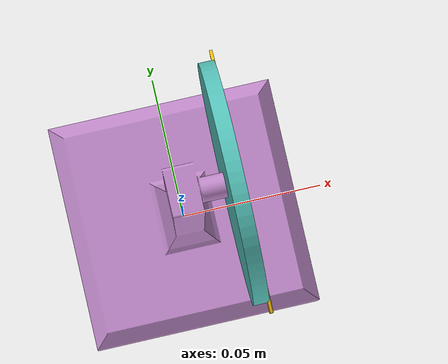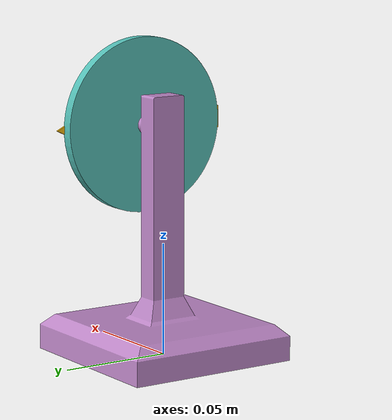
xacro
<?xml version="1.0" ?>
<robot name="motor_testbench" xmlns:xacro="http://www.ros.org/wiki/xacro">

    <xacro:include filename="$(find core_description)/urdf/motor_testbench/modules/motor_testbench.xacro" />
    <xacro:include filename="$(find core_description)/urdf/motor_testbench/modules/gazebo_properties.xacro" />
    <xacro:include filename="$(find core_description)/urdf/motor_testbench/modules/ros2_control.xacro" />

</robot>

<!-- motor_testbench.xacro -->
<!-- Generated using onshape-to-robot -->
<!-- Onshape document_id: efcccd1dc7a5e6be06e0f157 -->
<robot xmlns:xacro="http://www.ros.org/wiki/xacro">

  <link name="base_footprint" />
  <joint name="base_joint" type="fixed">
        <parent link="base_footprint"/>
        <child link="base_link"/>
        <origin xyz="0 0 0" rpy="0 0 0"/>
  </joint>

  <!-- Link base_link -->
  <link name="base_link">
    <inertial>
      <origin xyz="0.000176309 -0 0.0164214" rpy="0 0 0"/>
      <mass value="0.122666"/>
      <inertia ixx="0.000124393" ixy="0" ixz="-1.33825e-06" iyy="0.000124263" iyz="0" izz="0.000107738"/>
    </inertial>
    <!-- Part base_link -->
    <visual>
      <origin xyz="0 0 0" rpy="0 -0 0"/>
      <geometry>
        <mesh filename="package://core_description/meshes/motor_testbench/base_link.stl"/>
      </geometry>
      <material name="base_link_material">
        <color rgba="0.764706 0.545098 0.803922 1"/>
      </material>
    </visual>
    <collision>
      <origin xyz="0 0 0" rpy="0 -0 0"/>
      <geometry>
        <mesh filename="package://core_description/meshes/motor_testbench/base_link.stl"/>
      </geometry>
    </collision>
  </link>
  <!-- Link rotor_link -->
  <link name="rotor_link">
    <inertial>
      <origin xyz="0 1.56573e-05 -0.00253419" rpy="0 0 0"/>
      <mass value="0.0244975"/>
      <inertia ixx="9.41402e-06" ixy="0" ixz="-0" iyy="9.60298e-06" iyz="-8.76e-10" izz="1.89172e-05"/>
    </inertial>
    <!-- Part rotor_link -->
    <visual>
      <origin xyz="-0 -0.101362 -0.0191322" rpy="-1.5708 -1.5708 0"/>
      <geometry>
        <mesh filename="package://core_description/meshes/motor_testbench/rotor_link.stl"/>
      </geometry>
      <material name="rotor_link_material">
        <color rgba="0.341176 0.776471 0.741176 1"/>
      </material>
    </visual>
    <collision>
      <origin xyz="-0 -0.101362 -0.0191322" rpy="-1.5708 -1.5708 0"/>
      <geometry>
        <mesh filename="package://core_description/meshes/motor_testbench/rotor_link.stl"/>
      </geometry>
    </collision>
  </link>
  <!-- Link pointer_link -->
  <link name="pointer_link">
    <inertial>
      <origin xyz="6.1146e-08 0.00251913 -0.000485276" rpy="0 0 0"/>
      <mass value="0.000749199"/>
      <inertia ixx="4.35876e-07" ixy="0" ixz="0" iyy="5.82e-09" iyz="-1.6e-11" izz="4.41574e-07"/>
    </inertial>
    <!-- Part pointer_link -->
    <visual>
      <origin xyz="-0 0.101362 0.0186322" rpy="1.5708 1.5708 0"/>
      <geometry>
        <mesh filename="package://core_description/meshes/motor_testbench/pointer_link.stl"/>
      </geometry>
      <material name="pointer_link_material">
        <color rgba="1 0.756863 0.054902 1"/>
      </material>
    </visual>
    <collision>
      <origin xyz="-0 0.101362 0.0186322" rpy="1.5708 1.5708 0"/>
      <geometry>
        <mesh filename="package://core_description/meshes/motor_testbench/pointer_link.stl"/>
      </geometry>
    </collision>
  </link>
  <!-- Joint from rotor_link to pointer_link -->
  <joint name="pointer_joint" type="fixed">
    <origin xyz="0 0 -0.0005" rpy="3.14159 -0 0"/>
    <parent link="rotor_link"/>
    <child link="pointer_link"/>
    <axis xyz="0 0 1"/>
    <limit effort="10" velocity="10"/>
  </joint>
  <!-- Joint from base_link to rotor_link -->
  <joint name="rotor_joint" type="continuous">
    <origin xyz="0.0191322 0 0.101362" rpy="1.5708 1.5708 1.5708"/>
    <parent link="base_link"/>
    <child link="rotor_link"/>
    <axis xyz="0 0 1"/>
    <limit effort="10" velocity="10"/>
  </joint>
</robot>
